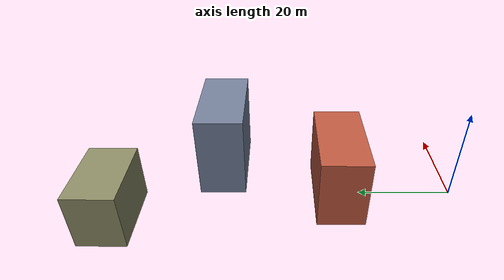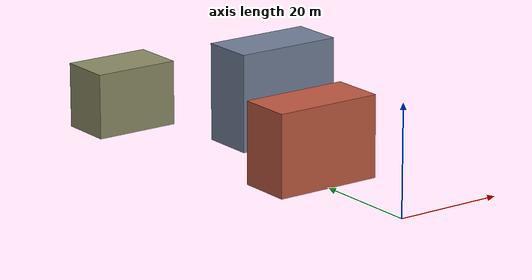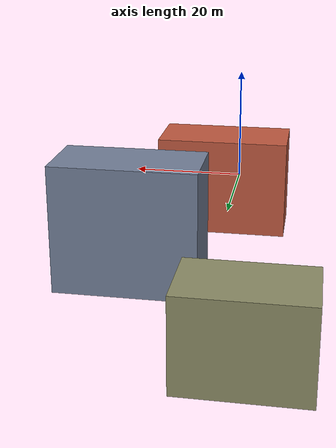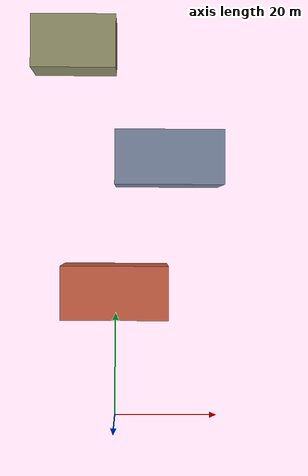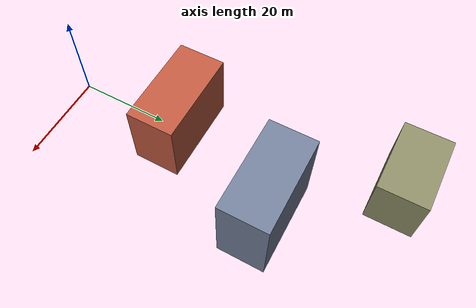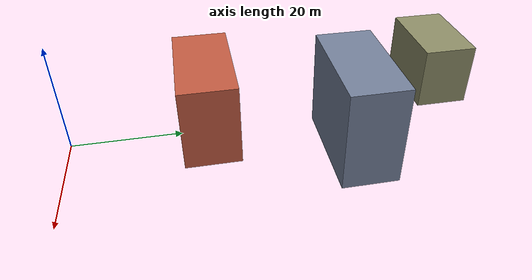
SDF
<sdf version="1.9">
 <world name="iris_runway">
  <physics name="1ms" type="ignore">
   <max_step_size>0.001</max_step_size>
   <real_time_factor>1.0</real_time_factor>
  </physics>
  <plugin filename="gz-sim-physics-system" name="gz::sim::systems::Physics"/>
  <plugin filename="gz-sim-sensors-system" name="gz::sim::systems::Sensors">
   <render_engine>ogre2</render_engine>
  </plugin>
  <plugin filename="gz-sim-user-commands-system" name="gz::sim::systems::UserCommands"/>
  <plugin filename="gz-sim-scene-broadcaster-system" name="gz::sim::systems::SceneBroadcaster"/>
  <plugin filename="gz-sim-imu-system" name="gz::sim::systems::Imu"/>
  <plugin filename="gz-sim-navsat-system" name="gz::sim::systems::NavSat"/>
  <scene><shadows>false</shadows><ambient>1.0 1.0 1.0</ambient><background>0.8 0.8 0.8</background></scene>
  <spherical_coordinates>
   <latitude_deg>-35.363262</latitude_deg>
   <longitude_deg>149.165237</longitude_deg>
   <elevation>584</elevation>
   <heading_deg>0</heading_deg>
   <surface_model>EARTH_WGS84</surface_model>
  </spherical_coordinates>
  <light type="directional" name="sun">
   <pose>0 0 10 0 0 0</pose>
   <diffuse>0.8 0.8 0.8 1</diffuse>
   <specular>0.8 0.8 0.8 1</specular>
   <attenuation>
    <range>1000</range>
    <constant>0.9</constant>
    <linear>0.01</linear>
    <quadratic>0.001</quadratic>
   </attenuation>
   <direction>-0.5 0.1 -0.9</direction>
  </light>
  <model name="axes">
   <static>1</static>
   <link name="link">
    <visual name="r">
     <cast_shadows>0</cast_shadows>
     <pose>5 0 0.1 0 0 0</pose>
     <geometry><box><size>10 0.01 0.01</size></box></geometry>
     <material>
      <ambient>1 0 0 0.8</ambient>
      <diffuse>1 0 0 0.8</diffuse>
      <emissive>1 0 0 0.8</emissive>
      <specular>0.5 0.5 0.5 0.8</specular>
     </material>
    </visual>
    <visual name="g">
     <cast_shadows>0</cast_shadows>
     <pose>0 5 0.1 0 0 0</pose>
     <geometry><box><size>0.01 10 0.01</size></box></geometry>
     <material>
      <ambient>0 1 0 0.8</ambient>
      <diffuse>0 1 0 0.8</diffuse>
      <emissive>0 1 0 0.8</emissive>
      <specular>0.5 0.5 0.5 0.8</specular>
     </material>
    </visual>
    <visual name="b">
     <cast_shadows>0</cast_shadows>
     <pose>0 0 5.1 0 0 0</pose>
     <geometry><box><size>0.01 0.01 10</size></box></geometry>
     <material>
      <ambient>0 0 1 0.8</ambient>
      <diffuse>0 0 1 0.8</diffuse>
      <emissive>0 0 1 0.8</emissive>
      <specular>0.5 0.5 0.5 0.8</specular>
     </material>
    </visual>
    <sensor name="navsat_sensor" type="navsat"><always_on>1</always_on><update_rate>1</update_rate></sensor>
   </link>
  </model>
  <model name="b1">
   <static>true</static>
   <pose>0.0 25.0 7.5 0 0 0</pose>
   <link name="link">
    <collision name="collision"><geometry><box><size>20.0 10.0 15.0</size></box></geometry></collision>
    <visual name="visual">
     <geometry><box><size>20.0 10.0 15.0</size></box></geometry>
     <material><ambient>0.75 0.35 0.25 1</ambient><diffuse>0.75 0.35 0.25 1</diffuse></material>
    </visual>
   </link>
  </model>
  <model name="b2">
   <static>true</static>
   <pose>10.0 50.0 9.0 0 0 0</pose>
   <link name="link">
    <collision name="collision"><geometry><box><size>20.0 10.0 18.0</size></box></geometry></collision>
    <visual name="visual">
     <geometry><box><size>20.0 10.0 18.0</size></box></geometry>
     <material><ambient>0.45 0.50 0.60 1</ambient><diffuse>0.45 0.50 0.60 1</diffuse></material>
    </visual>
   </link>
  </model>
  <model name="b3">
   <static>true</static>
   <pose>-8.0 72.0 6.0 0 0 0</pose>
   <link name="link">
    <collision name="collision"><geometry><box><size>16.0 10.0 12.0</size></box></geometry></collision>
    <visual name="visual">
     <geometry><box><size>16.0 10.0 12.0</size></box></geometry>
     <material><ambient>0.55 0.55 0.40 1</ambient><diffuse>0.55 0.55 0.40 1</diffuse></material>
    </visual>
   </link>
  </model>
 </world>
</sdf>
